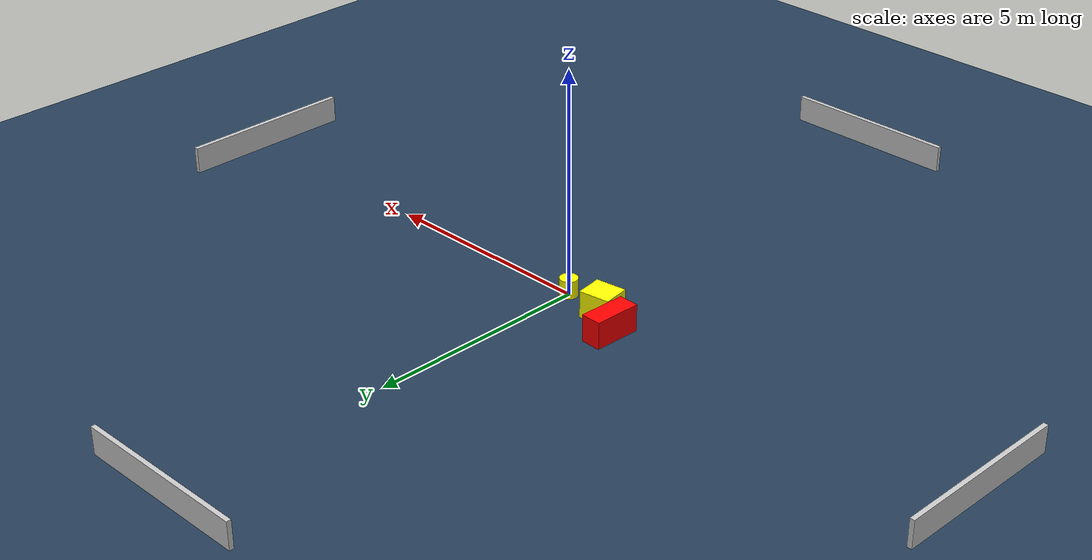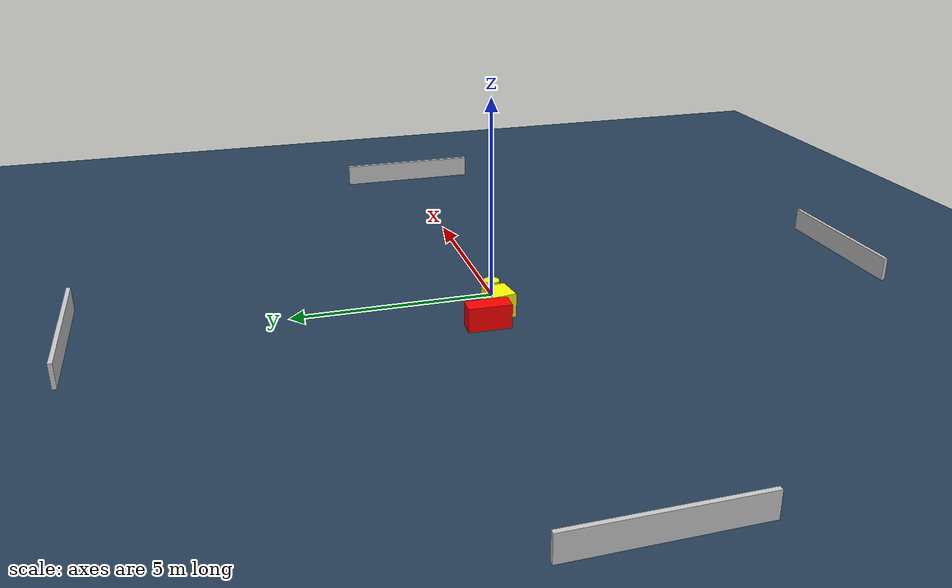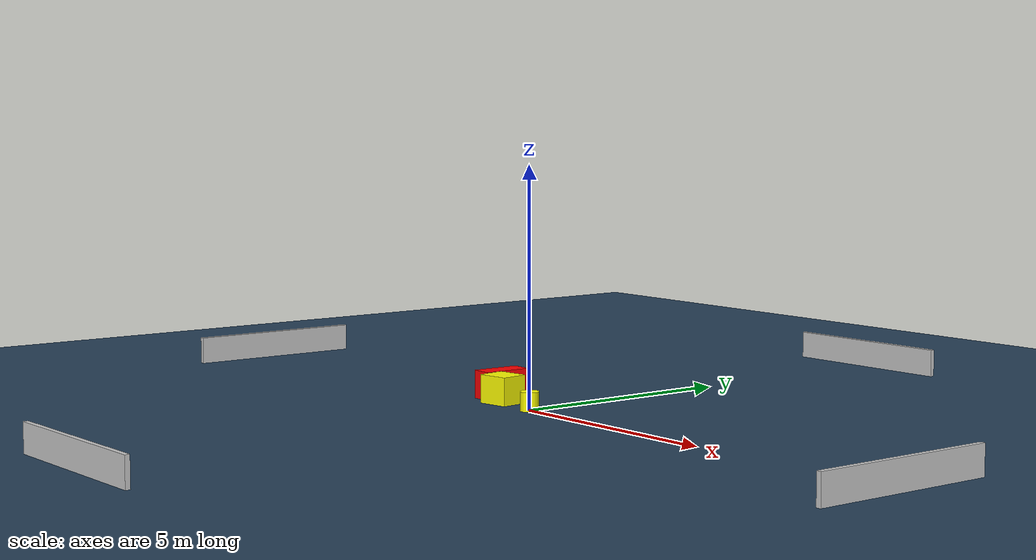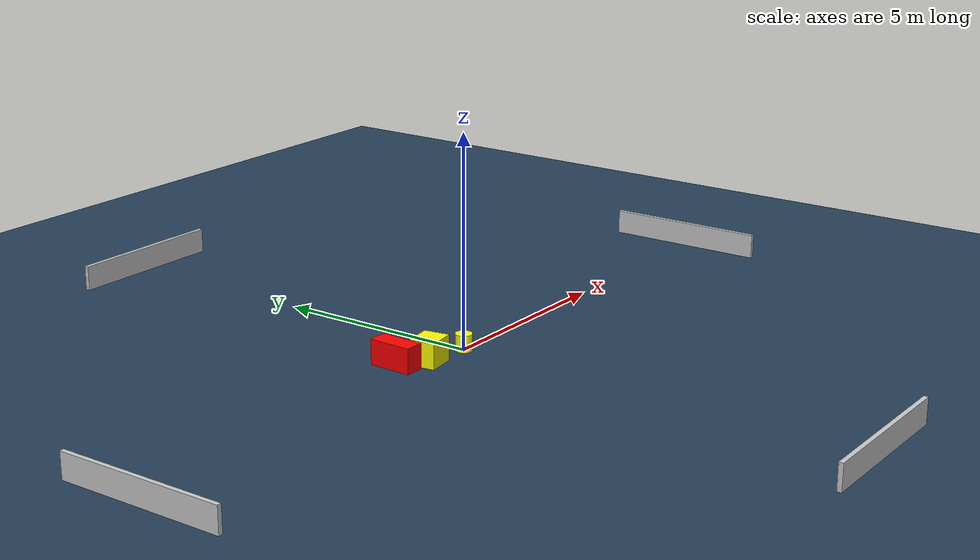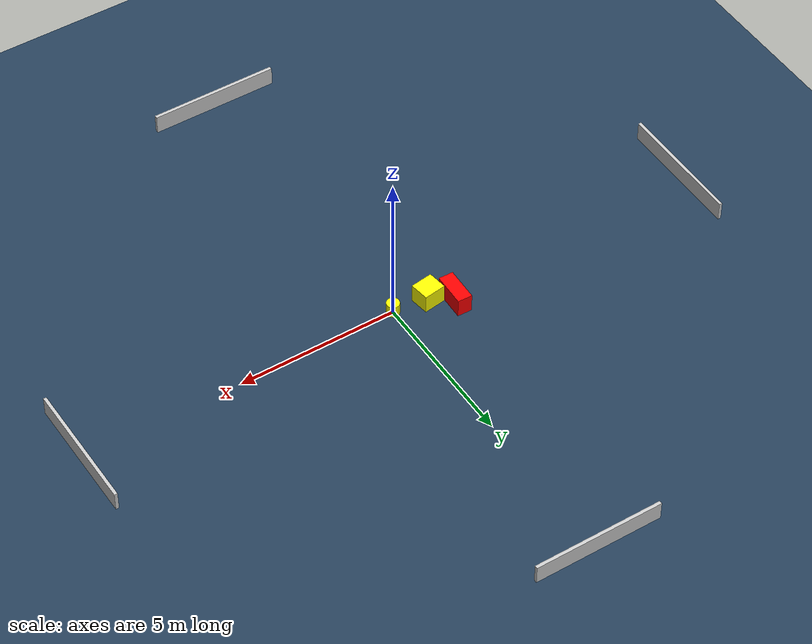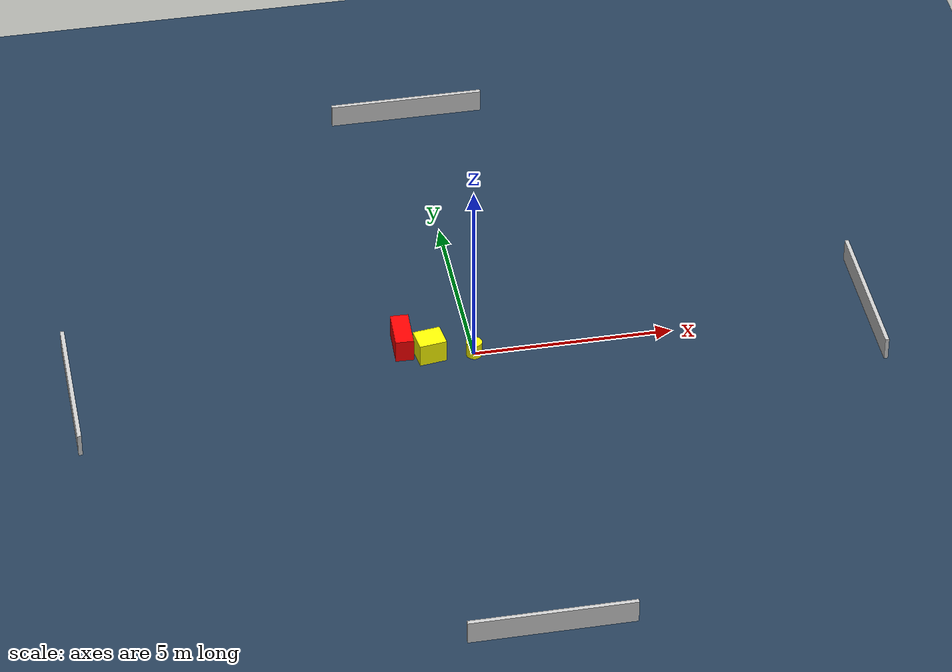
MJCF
<?xml version="1.0" ?>
<mujoco model="generated_environment">
  <option timestep="0.01" integrator="RK4" cone="elliptic"/>
  <default>
    <geom density="1"/>
  </default>
  <asset>
    <texture builtin="gradient" height="3072" name="skybox" rgb1="0.3 0.5 0.7" rgb2="0 0 0" type="skybox" width="512"/>
    <texture builtin="checker" height="300" name="groundplane" rgb1="0.2 0.3 0.4" rgb2="0.1 0.2 0.3" type="2d" width="300"/>
    <material name="groundplane" reflectance="0.2" texrepeat="5 5" texture="groundplane"/>
  </asset>
  <worldbody>
    <light dir="0 0 -1" directional="true" pos="0 0 1.5"/>
    <geom condim="3" friction="0.5 0.005 0.001" material="groundplane" name="floor" pos="0 0 0" size="0 0 0.05" type="plane"/>
    <body name="walls">
      <geom name="wall_1" condim="4" pos="-10.0 0.0 0.3" rgba="0.800000011920929 0.800000011920929 0.800000011920929 1.0" size="0.05 2.0 0.3" type="box"/>
      <geom name="wall_2" condim="4" pos="10.0 0.0 0.3" rgba="0.800000011920929 0.800000011920929 0.800000011920929 1.0" size="0.05 2.0 0.3" type="box"/>
      <geom name="wall_3" condim="4" pos="0.0 -10.0 0.3" rgba="0.800000011920929 0.800000011920929 0.800000011920929 1.0" size="2.0 0.05 0.3" type="box"/>
      <geom name="wall_4" condim="4" pos="0.0 10.0 0.3" rgba="0.800000011920929 0.800000011920929 0.800000011920929 1.0" size="2.0 0.05 0.3" type="box"/>
    </body>
    <body name="robot">
      <joint name="joint_x" type="slide" pos="0 0 0" axis="1 0 0"/>
      <joint name="joint_y" type="slide" pos="0 0 0" axis="0 1 0"/>
      <geom name="robot" type="cylinder" pos="0.0 0.0 0.2" size="0.2 0.2 0.0" mass="5.0" friction="1.0 0.005 0.0001" condim="4" rgba="1.0 1.0 0.0 1.0"/>
    </body>
    <body name="obstacle_1_movable">
      <geom name="obstacle_1_movable" condim="4" pos="-1.087693337010738 0.1446010521491852 0.3" euler="0 0 98.08457092161822" friction="0.0 0.005 0.001" rgba="1.0 1.0 0.0 1.0" size="0.3022877013575407 0.34740438933781553 0.3" type="box" mass="0.1"/>
      <joint type="free"/>
    </body>
    <body name="obstacle_2_static">
      <geom name="obstacle_2_static" condim="4" pos="-1.7119733182780639 0.5873605533509908 0.3" euler="0 0 178.06554690373878" friction="0.0 0.005 0.001" rgba="1.0 0.0 0.0 1.0" size="0.22784945586583275 0.5240372429569515 0.3" type="box"/>
    </body>
  </worldbody>
  <actuator>
    <motor name="actuator_x" joint="joint_x" gear="1" ctrlrange="-1 1"/>
    <motor name="actuator_y" joint="joint_y" gear="1" ctrlrange="-1 1"/>
  </actuator>
</mujoco>
